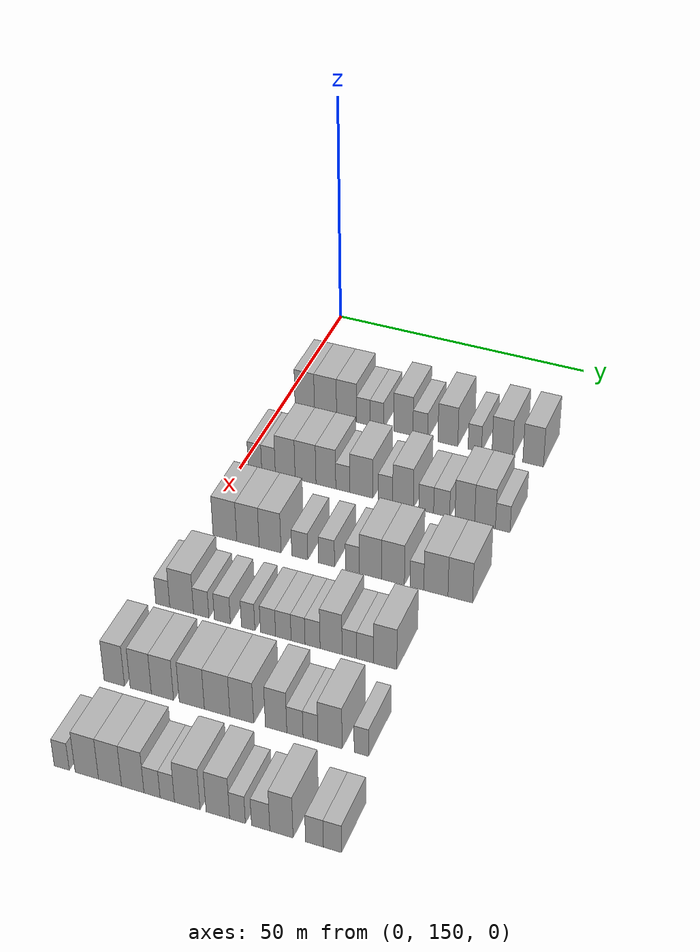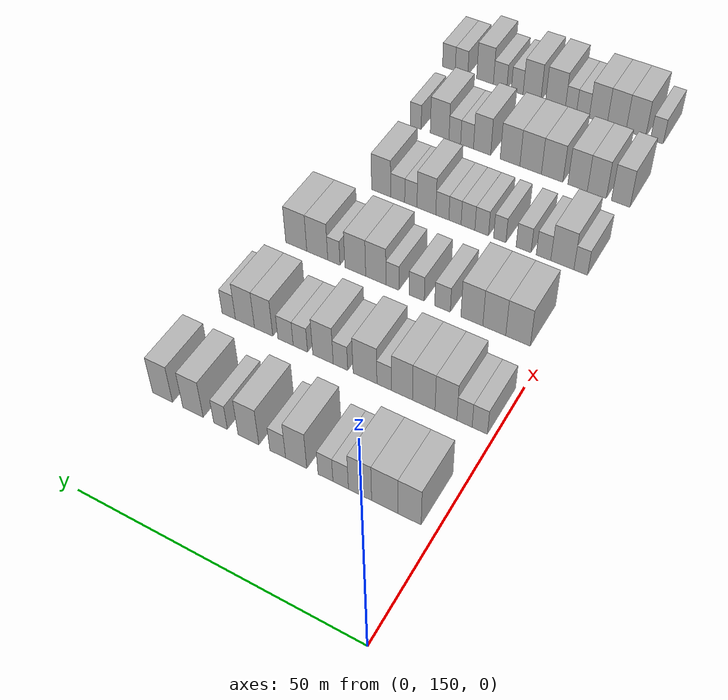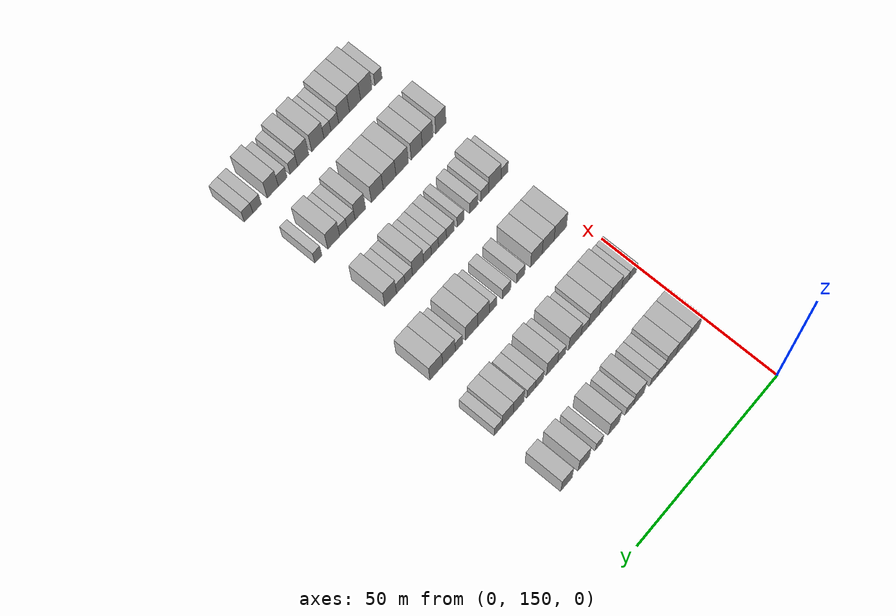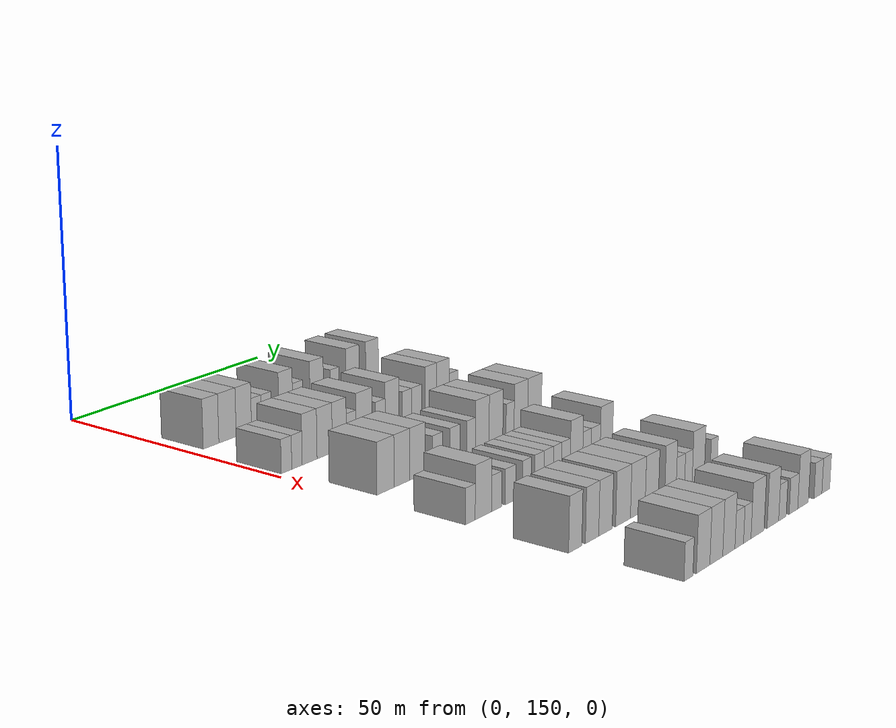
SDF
<sdf version="1.6">
 <world name="default">
  <model name="building_137">
   <static>1</static>
   <pose>25.0000 154.5564 0 0.000000 0.000000 0.000000</pose>
   <link name="link">
    <pose>0 0 4.50 0 0 0</pose>
    <collision name="collision"><geometry><box><size>10.0000 3.9215 9.0000</size></box></geometry></collision>
    <visual name="visual">
     <cast_shadows>0</cast_shadows>
     <geometry><box><size>10.0000 3.9215 9.0000</size></box></geometry>
     <material>
      <script>
       <uri>model://HANNAS_wall/materials/scripts</uri>
       <uri>model://HANNAS_wall/materials/textures</uri>
       <name>vrc/HANNAS_wall</name>
      </script>
     </material>
    </visual>
   </link>
  </model>
  <model name="building_138">
   <static>1</static>
   <pose>25.0000 158.7428 0 0.000000 0.000000 0.000000</pose>
   <link name="link">
    <pose>0 0 4.50 0 0 0</pose>
    <collision name="collision"><geometry><box><size>10.0000 4.4513 9.0000</size></box></geometry></collision>
    <visual name="visual">
     <cast_shadows>0</cast_shadows>
     <geometry><box><size>10.0000 4.4513 9.0000</size></box></geometry>
     <material>
      <script>
       <uri>model://HANNAS_wall/materials/scripts</uri>
       <uri>model://HANNAS_wall/materials/textures</uri>
       <name>vrc/HANNAS_wall</name>
      </script>
     </material>
    </visual>
   </link>
  </model>
  <model name="building_139">
   <static>1</static>
   <pose>25.0000 162.9707 0 0.000000 0.000000 0.000000</pose>
   <link name="link">
    <pose>0 0 4.50 0 0 0</pose>
    <collision name="collision"><geometry><box><size>10.0000 4.0044 9.0000</size></box></geometry></collision>
    <visual name="visual">
     <cast_shadows>0</cast_shadows>
     <geometry><box><size>10.0000 4.0044 9.0000</size></box></geometry>
     <material>
      <script>
       <uri>model://HANNAS_wall/materials/scripts</uri>
       <uri>model://HANNAS_wall/materials/textures</uri>
       <name>vrc/HANNAS_wall</name>
      </script>
     </material>
    </visual>
   </link>
  </model>
  <model name="building_140">
   <static>1</static>
   <pose>25.0000 166.3244 0 0.000000 0.000000 0.000000</pose>
   <link name="link">
    <pose>0 0 3.00 0 0 0</pose>
    <collision name="collision"><geometry><box><size>10.0000 2.7031 6.0000</size></box></geometry></collision>
    <visual name="visual">
     <cast_shadows>0</cast_shadows>
     <geometry><box><size>10.0000 2.7031 6.0000</size></box></geometry>
     <material>
      <script>
       <uri>model://HANNAS_wall/materials/scripts</uri>
       <uri>model://HANNAS_wall/materials/textures</uri>
       <name>vrc/HANNAS_wall</name>
      </script>
     </material>
    </visual>
   </link>
  </model>
  <model name="building_141">
   <static>1</static>
   <pose>25.0000 168.9942 0 0.000000 0.000000 0.000000</pose>
   <link name="link">
    <pose>0 0 3.00 0 0 0</pose>
    <collision name="collision"><geometry><box><size>10.0000 2.6364 6.0000</size></box></geometry></collision>
    <visual name="visual">
     <cast_shadows>0</cast_shadows>
     <geometry><box><size>10.0000 2.6364 6.0000</size></box></geometry>
     <material>
      <script>
       <uri>model://HANNAS_wall/materials/scripts</uri>
       <uri>model://HANNAS_wall/materials/textures</uri>
       <name>vrc/HANNAS_wall</name>
      </script>
     </material>
    </visual>
   </link>
  </model>
  <model name="building_142">
   <static>1</static>
   <pose>25.0000 174.2160 0 0.000000 0.000000 0.000000</pose>
   <link name="link">
    <pose>0 0 4.50 0 0 0</pose>
    <collision name="collision"><geometry><box><size>10.0000 3.8071 9.0000</size></box></geometry></collision>
    <visual name="visual">
     <cast_shadows>0</cast_shadows>
     <geometry><box><size>10.0000 3.8071 9.0000</size></box></geometry>
     <material>
      <script>
       <uri>model://HANNAS_wall/materials/scripts</uri>
       <uri>model://HANNAS_wall/materials/textures</uri>
       <name>vrc/HANNAS_wall</name>
      </script>
     </material>
    </visual>
   </link>
  </model>
  <model name="building_143">
   <static>1</static>
   <pose>25.0000 177.5562 0 0.000000 0.000000 0.000000</pose>
   <link name="link">
    <pose>0 0 3.00 0 0 0</pose>
    <collision name="collision"><geometry><box><size>10.0000 2.8733 6.0000</size></box></geometry></collision>
    <visual name="visual">
     <cast_shadows>0</cast_shadows>
     <geometry><box><size>10.0000 2.8733 6.0000</size></box></geometry>
     <material>
      <script>
       <uri>model://HANNAS_wall/materials/scripts</uri>
       <uri>model://HANNAS_wall/materials/textures</uri>
       <name>vrc/HANNAS_wall</name>
      </script>
     </material>
    </visual>
   </link>
  </model>
  <model name="building_144">
   <static>1</static>
   <pose>25.0000 182.9246 0 0.000000 0.000000 0.000000</pose>
   <link name="link">
    <pose>0 0 4.50 0 0 0</pose>
    <collision name="collision"><geometry><box><size>10.0000 3.8635 9.0000</size></box></geometry></collision>
    <visual name="visual">
     <cast_shadows>0</cast_shadows>
     <geometry><box><size>10.0000 3.8635 9.0000</size></box></geometry>
     <material>
      <script>
       <uri>model://HANNAS_wall/materials/scripts</uri>
       <uri>model://HANNAS_wall/materials/textures</uri>
       <name>vrc/HANNAS_wall</name>
      </script>
     </material>
    </visual>
   </link>
  </model>
  <model name="building_145">
   <static>1</static>
   <pose>25.0000 188.1455 0 0.000000 0.000000 0.000000</pose>
   <link name="link">
    <pose>0 0 3.00 0 0 0</pose>
    <collision name="collision"><geometry><box><size>10.0000 2.5784 6.0000</size></box></geometry></collision>
    <visual name="visual">
     <cast_shadows>0</cast_shadows>
     <geometry><box><size>10.0000 2.5784 6.0000</size></box></geometry>
     <material>
      <script>
       <uri>model://HANNAS_wall/materials/scripts</uri>
       <uri>model://HANNAS_wall/materials/textures</uri>
       <name>vrc/HANNAS_wall</name>
      </script>
     </material>
    </visual>
   </link>
  </model>
  <model name="building_146">
   <static>1</static>
   <pose>25.0000 193.3912 0 0.000000 0.000000 0.000000</pose>
   <link name="link">
    <pose>0 0 4.50 0 0 0</pose>
    <collision name="collision"><geometry><box><size>10.0000 3.9129 9.0000</size></box></geometry></collision>
    <visual name="visual">
     <cast_shadows>0</cast_shadows>
     <geometry><box><size>10.0000 3.9129 9.0000</size></box></geometry>
     <material>
      <script>
       <uri>model://HANNAS_wall/materials/scripts</uri>
       <uri>model://HANNAS_wall/materials/textures</uri>
       <name>vrc/HANNAS_wall</name>
      </script>
     </material>
    </visual>
   </link>
  </model>
  <model name="building_147">
   <static>1</static>
   <pose>25.0000 199.2993 0 0.000000 0.000000 0.000000</pose>
   <link name="link">
    <pose>0 0 4.50 0 0 0</pose>
    <collision name="collision"><geometry><box><size>10.0000 3.9034 9.0000</size></box></geometry></collision>
    <visual name="visual">
     <cast_shadows>0</cast_shadows>
     <geometry><box><size>10.0000 3.9034 9.0000</size></box></geometry>
     <material>
      <script>
       <uri>model://HANNAS_wall/materials/scripts</uri>
       <uri>model://HANNAS_wall/materials/textures</uri>
       <name>vrc/HANNAS_wall</name>
      </script>
     </material>
    </visual>
   </link>
  </model>
  <model name="building_311">
   <static>1</static>
   <pose>44.0000 152.5964 0 0.000000 0.000000 0.000000</pose>
   <link name="link">
    <pose>0 0 3.00 0 0 0</pose>
    <collision name="collision"><geometry><box><size>10.0000 2.6664 6.0000</size></box></geometry></collision>
    <visual name="visual">
     <cast_shadows>0</cast_shadows>
     <geometry><box><size>10.0000 2.6664 6.0000</size></box></geometry>
     <material>
      <script>
       <uri>model://HANNAS_wall/materials/scripts</uri>
       <uri>model://HANNAS_wall/materials/textures</uri>
       <name>vrc/HANNAS_wall</name>
      </script>
     </material>
    </visual>
   </link>
  </model>
  <model name="building_312">
   <static>1</static>
   <pose>44.0000 155.2614 0 0.000000 0.000000 0.000000</pose>
   <link name="link">
    <pose>0 0 3.00 0 0 0</pose>
    <collision name="collision"><geometry><box><size>10.0000 2.6636 6.0000</size></box></geometry></collision>
    <visual name="visual">
     <cast_shadows>0</cast_shadows>
     <geometry><box><size>10.0000 2.6636 6.0000</size></box></geometry>
     <material>
      <script>
       <uri>model://HANNAS_wall/materials/scripts</uri>
       <uri>model://HANNAS_wall/materials/textures</uri>
       <name>vrc/HANNAS_wall</name>
      </script>
     </material>
    </visual>
   </link>
  </model>
  <model name="building_313">
   <static>1</static>
   <pose>44.0000 158.5323 0 0.000000 0.000000 0.000000</pose>
   <link name="link">
    <pose>0 0 4.50 0 0 0</pose>
    <collision name="collision"><geometry><box><size>10.0000 3.8782 9.0000</size></box></geometry></collision>
    <visual name="visual">
     <cast_shadows>0</cast_shadows>
     <geometry><box><size>10.0000 3.8782 9.0000</size></box></geometry>
     <material>
      <script>
       <uri>model://HANNAS_wall/materials/scripts</uri>
       <uri>model://HANNAS_wall/materials/textures</uri>
       <name>vrc/HANNAS_wall</name>
      </script>
     </material>
    </visual>
   </link>
  </model>
  <model name="building_314">
   <static>1</static>
   <pose>44.0000 162.4933 0 0.000000 0.000000 0.000000</pose>
   <link name="link">
    <pose>0 0 4.50 0 0 0</pose>
    <collision name="collision"><geometry><box><size>10.0000 4.0440 9.0000</size></box></geometry></collision>
    <visual name="visual">
     <cast_shadows>0</cast_shadows>
     <geometry><box><size>10.0000 4.0440 9.0000</size></box></geometry>
     <material>
      <script>
       <uri>model://HANNAS_wall/materials/scripts</uri>
       <uri>model://HANNAS_wall/materials/textures</uri>
       <name>vrc/HANNAS_wall</name>
      </script>
     </material>
    </visual>
   </link>
  </model>
  <model name="building_315">
   <static>1</static>
   <pose>44.0000 166.4260 0 0.000000 0.000000 0.000000</pose>
   <link name="link">
    <pose>0 0 4.50 0 0 0</pose>
    <collision name="collision"><geometry><box><size>10.0000 3.8213 9.0000</size></box></geometry></collision>
    <visual name="visual">
     <cast_shadows>0</cast_shadows>
     <geometry><box><size>10.0000 3.8213 9.0000</size></box></geometry>
     <material>
      <script>
       <uri>model://HANNAS_wall/materials/scripts</uri>
       <uri>model://HANNAS_wall/materials/textures</uri>
       <name>vrc/HANNAS_wall</name>
      </script>
     </material>
    </visual>
   </link>
  </model>
  <model name="building_316">
   <static>1</static>
   <pose>44.0000 169.6751 0 0.000000 0.000000 0.000000</pose>
   <link name="link">
    <pose>0 0 3.00 0 0 0</pose>
    <collision name="collision"><geometry><box><size>10.0000 2.6770 6.0000</size></box></geometry></collision>
    <visual name="visual">
     <cast_shadows>0</cast_shadows>
     <geometry><box><size>10.0000 2.6770 6.0000</size></box></geometry>
     <material>
      <script>
       <uri>model://HANNAS_wall/materials/scripts</uri>
       <uri>model://HANNAS_wall/materials/textures</uri>
       <name>vrc/HANNAS_wall</name>
      </script>
     </material>
    </visual>
   </link>
  </model>
  <model name="building_317">
   <static>1</static>
   <pose>44.0000 173.2300 0 0.000000 0.000000 0.000000</pose>
   <link name="link">
    <pose>0 0 4.50 0 0 0</pose>
    <collision name="collision"><geometry><box><size>10.0000 4.4329 9.0000</size></box></geometry></collision>
    <visual name="visual">
     <cast_shadows>0</cast_shadows>
     <geometry><box><size>10.0000 4.4329 9.0000</size></box></geometry>
     <material>
      <script>
       <uri>model://HANNAS_wall/materials/scripts</uri>
       <uri>model://HANNAS_wall/materials/textures</uri>
       <name>vrc/HANNAS_wall</name>
      </script>
     </material>
    </visual>
   </link>
  </model>
  <model name="building_318">
   <static>1</static>
   <pose>44.0000 177.8176 0 0.000000 0.000000 0.000000</pose>
   <link name="link">
    <pose>0 0 3.00 0 0 0</pose>
    <collision name="collision"><geometry><box><size>10.0000 2.7422 6.0000</size></box></geometry></collision>
    <visual name="visual">
     <cast_shadows>0</cast_shadows>
     <geometry><box><size>10.0000 2.7422 6.0000</size></box></geometry>
     <material>
      <script>
       <uri>model://HANNAS_wall/materials/scripts</uri>
       <uri>model://HANNAS_wall/materials/textures</uri>
       <name>vrc/HANNAS_wall</name>
      </script>
     </material>
    </visual>
   </link>
  </model>
  <model name="building_319">
   <static>1</static>
   <pose>44.0000 181.1427 0 0.000000 0.000000 0.000000</pose>
   <link name="link">
    <pose>0 0 4.50 0 0 0</pose>
    <collision name="collision"><geometry><box><size>10.0000 3.9082 9.0000</size></box></geometry></collision>
    <visual name="visual">
     <cast_shadows>0</cast_shadows>
     <geometry><box><size>10.0000 3.9082 9.0000</size></box></geometry>
     <material>
      <script>
       <uri>model://HANNAS_wall/materials/scripts</uri>
       <uri>model://HANNAS_wall/materials/textures</uri>
       <name>vrc/HANNAS_wall</name>
      </script>
     </material>
    </visual>
   </link>
  </model>
  <model name="building_320">
   <static>1</static>
   <pose>44.0000 185.4923 0 0.000000 0.000000 0.000000</pose>
   <link name="link">
    <pose>0 0 3.00 0 0 0</pose>
    <collision name="collision"><geometry><box><size>10.0000 2.7911 6.0000</size></box></geometry></collision>
    <visual name="visual">
     <cast_shadows>0</cast_shadows>
     <geometry><box><size>10.0000 2.7911 6.0000</size></box></geometry>
     <material>
      <script>
       <uri>model://HANNAS_wall/materials/scripts</uri>
       <uri>model://HANNAS_wall/materials/textures</uri>
       <name>vrc/HANNAS_wall</name>
      </script>
     </material>
    </visual>
   </link>
  </model>
  <model name="building_321">
   <static>1</static>
   <pose>44.0000 188.3808 0 0.000000 0.000000 0.000000</pose>
   <link name="link">
    <pose>0 0 3.00 0 0 0</pose>
    <collision name="collision"><geometry><box><size>10.0000 2.9858 6.0000</size></box></geometry></collision>
    <visual name="visual">
     <cast_shadows>0</cast_shadows>
     <geometry><box><size>10.0000 2.9858 6.0000</size></box></geometry>
     <material>
      <script>
       <uri>model://HANNAS_wall/materials/scripts</uri>
       <uri>model://HANNAS_wall/materials/textures</uri>
       <name>vrc/HANNAS_wall</name>
      </script>
     </material>
    </visual>
   </link>
  </model>
  <model name="building_322">
   <static>1</static>
   <pose>44.0000 192.6890 0 0.000000 0.000000 0.000000</pose>
   <link name="link">
    <pose>0 0 4.50 0 0 0</pose>
    <collision name="collision"><geometry><box><size>10.0000 3.6307 9.0000</size></box></geometry></collision>
    <visual name="visual">
     <cast_shadows>0</cast_shadows>
     <geometry><box><size>10.0000 3.6307 9.0000</size></box></geometry>
     <material>
      <script>
       <uri>model://HANNAS_wall/materials/scripts</uri>
       <uri>model://HANNAS_wall/materials/textures</uri>
       <name>vrc/HANNAS_wall</name>
      </script>
     </material>
    </visual>
   </link>
  </model>
  <model name="building_323">
   <static>1</static>
   <pose>44.0000 196.4230 0 0.000000 0.000000 0.000000</pose>
   <link name="link">
    <pose>0 0 4.50 0 0 0</pose>
    <collision name="collision"><geometry><box><size>10.0000 3.8373 9.0000</size></box></geometry></collision>
    <visual name="visual">
     <cast_shadows>0</cast_shadows>
     <geometry><box><size>10.0000 3.8373 9.0000</size></box></geometry>
     <material>
      <script>
       <uri>model://HANNAS_wall/materials/scripts</uri>
       <uri>model://HANNAS_wall/materials/textures</uri>
       <name>vrc/HANNAS_wall</name>
      </script>
     </material>
    </visual>
   </link>
  </model>
  <model name="building_324">
   <static>1</static>
   <pose>44.0000 199.6893 0 0.000000 0.000000 0.000000</pose>
   <link name="link">
    <pose>0 0 3.00 0 0 0</pose>
    <collision name="collision"><geometry><box><size>10.0000 2.6952 6.0000</size></box></geometry></collision>
    <visual name="visual">
     <cast_shadows>0</cast_shadows>
     <geometry><box><size>10.0000 2.6952 6.0000</size></box></geometry>
     <material>
      <script>
       <uri>model://HANNAS_wall/materials/scripts</uri>
       <uri>model://HANNAS_wall/materials/textures</uri>
       <name>vrc/HANNAS_wall</name>
      </script>
     </material>
    </visual>
   </link>
  </model>
  <model name="building_474">
   <static>1</static>
   <pose>63.0000 155.1240 0 0.000000 0.000000 0.000000</pose>
   <link name="link">
    <pose>0 0 4.50 0 0 0</pose>
    <collision name="collision"><geometry><box><size>10.0000 4.4829 9.0000</size></box></geometry></collision>
    <visual name="visual">
     <cast_shadows>0</cast_shadows>
     <geometry><box><size>10.0000 4.4829 9.0000</size></box></geometry>
     <material>
      <script>
       <uri>model://HANNAS_wall/materials/scripts</uri>
       <uri>model://HANNAS_wall/materials/textures</uri>
       <name>vrc/HANNAS_wall</name>
      </script>
     </material>
    </visual>
   </link>
  </model>
  <model name="building_475">
   <static>1</static>
   <pose>63.0000 159.4865 0 0.000000 0.000000 0.000000</pose>
   <link name="link">
    <pose>0 0 4.50 0 0 0</pose>
    <collision name="collision"><geometry><box><size>10.0000 4.2420 9.0000</size></box></geometry></collision>
    <visual name="visual">
     <cast_shadows>0</cast_shadows>
     <geometry><box><size>10.0000 4.2420 9.0000</size></box></geometry>
     <material>
      <script>
       <uri>model://HANNAS_wall/materials/scripts</uri>
       <uri>model://HANNAS_wall/materials/textures</uri>
       <name>vrc/HANNAS_wall</name>
      </script>
     </material>
    </visual>
   </link>
  </model>
  <model name="building_476">
   <static>1</static>
   <pose>63.0000 163.6630 0 0.000000 0.000000 0.000000</pose>
   <link name="link">
    <pose>0 0 4.50 0 0 0</pose>
    <collision name="collision"><geometry><box><size>10.0000 4.1110 9.0000</size></box></geometry></collision>
    <visual name="visual">
     <cast_shadows>0</cast_shadows>
     <geometry><box><size>10.0000 4.1110 9.0000</size></box></geometry>
     <material>
      <script>
       <uri>model://HANNAS_wall/materials/scripts</uri>
       <uri>model://HANNAS_wall/materials/textures</uri>
       <name>vrc/HANNAS_wall</name>
      </script>
     </material>
    </visual>
   </link>
  </model>
  <model name="building_477">
   <static>1</static>
   <pose>63.0000 169.2064 0 0.000000 0.000000 0.000000</pose>
   <link name="link">
    <pose>0 0 3.00 0 0 0</pose>
    <collision name="collision"><geometry><box><size>10.0000 2.9759 6.0000</size></box></geometry></collision>
    <visual name="visual">
     <cast_shadows>0</cast_shadows>
     <geometry><box><size>10.0000 2.9759 6.0000</size></box></geometry>
     <material>
      <script>
       <uri>model://HANNAS_wall/materials/scripts</uri>
       <uri>model://HANNAS_wall/materials/textures</uri>
       <name>vrc/HANNAS_wall</name>
      </script>
     </material>
    </visual>
   </link>
  </model>
  <model name="building_478">
   <static>1</static>
   <pose>63.0000 174.1676 0 0.000000 0.000000 0.000000</pose>
   <link name="link">
    <pose>0 0 3.00 0 0 0</pose>
    <collision name="collision"><geometry><box><size>10.0000 2.9465 6.0000</size></box></geometry></collision>
    <visual name="visual">
     <cast_shadows>0</cast_shadows>
     <geometry><box><size>10.0000 2.9465 6.0000</size></box></geometry>
     <material>
      <script>
       <uri>model://HANNAS_wall/materials/scripts</uri>
       <uri>model://HANNAS_wall/materials/textures</uri>
       <name>vrc/HANNAS_wall</name>
      </script>
     </material>
    </visual>
   </link>
  </model>
  <model name="building_479">
   <static>1</static>
   <pose>63.0000 178.9086 0 0.000000 0.000000 0.000000</pose>
   <link name="link">
    <pose>0 0 3.00 0 0 0</pose>
    <collision name="collision"><geometry><box><size>10.0000 2.5354 6.0000</size></box></geometry></collision>
    <visual name="visual">
     <cast_shadows>0</cast_shadows>
     <geometry><box><size>10.0000 2.5354 6.0000</size></box></geometry>
     <material>
      <script>
       <uri>model://HANNAS_wall/materials/scripts</uri>
       <uri>model://HANNAS_wall/materials/textures</uri>
       <name>vrc/HANNAS_wall</name>
      </script>
     </material>
    </visual>
   </link>
  </model>
  <model name="building_480">
   <static>1</static>
   <pose>63.0000 182.1879 0 0.000000 0.000000 0.000000</pose>
   <link name="link">
    <pose>0 0 4.50 0 0 0</pose>
    <collision name="collision"><geometry><box><size>10.0000 4.0233 9.0000</size></box></geometry></collision>
    <visual name="visual">
     <cast_shadows>0</cast_shadows>
     <geometry><box><size>10.0000 4.0233 9.0000</size></box></geometry>
     <material>
      <script>
       <uri>model://HANNAS_wall/materials/scripts</uri>
       <uri>model://HANNAS_wall/materials/textures</uri>
       <name>vrc/HANNAS_wall</name>
      </script>
     </material>
    </visual>
   </link>
  </model>
  <model name="building_481">
   <static>1</static>
   <pose>63.0000 186.2838 0 0.000000 0.000000 0.000000</pose>
   <link name="link">
    <pose>0 0 4.50 0 0 0</pose>
    <collision name="collision"><geometry><box><size>10.0000 4.1685 9.0000</size></box></geometry></collision>
    <visual name="visual">
     <cast_shadows>0</cast_shadows>
     <geometry><box><size>10.0000 4.1685 9.0000</size></box></geometry>
     <material>
      <script>
       <uri>model://HANNAS_wall/materials/scripts</uri>
       <uri>model://HANNAS_wall/materials/textures</uri>
       <name>vrc/HANNAS_wall</name>
      </script>
     </material>
    </visual>
   </link>
  </model>
  <model name="building_482">
   <static>1</static>
   <pose>63.0000 190.6131 0 0.000000 0.000000 0.000000</pose>
   <link name="link">
    <pose>0 0 3.00 0 0 0</pose>
    <collision name="collision"><geometry><box><size>10.0000 2.4902 6.0000</size></box></geometry></collision>
    <visual name="visual">
     <cast_shadows>0</cast_shadows>
     <geometry><box><size>10.0000 2.4902 6.0000</size></box></geometry>
     <material>
      <script>
       <uri>model://HANNAS_wall/materials/scripts</uri>
       <uri>model://HANNAS_wall/materials/textures</uri>
       <name>vrc/HANNAS_wall</name>
      </script>
     </material>
    </visual>
   </link>
  </model>
  <model name="building_483">
   <static>1</static>
   <pose>63.0000 194.0188 0 0.000000 0.000000 0.000000</pose>
   <link name="link">
    <pose>0 0 4.50 0 0 0</pose>
    <collision name="collision"><geometry><box><size>10.0000 4.3211 9.0000</size></box></geometry></collision>
    <visual name="visual">
     <cast_shadows>0</cast_shadows>
     <geometry><box><size>10.0000 4.3211 9.0000</size></box></geometry>
     <material>
      <script>
       <uri>model://HANNAS_wall/materials/scripts</uri>
       <uri>model://HANNAS_wall/materials/textures</uri>
       <name>vrc/HANNAS_wall</name>
      </script>
     </material>
    </visual>
   </link>
  </model>
  <model name="building_484">
   <static>1</static>
   <pose>63.0000 198.3717 0 0.000000 0.000000 0.000000</pose>
   <link name="link">
    <pose>0 0 4.50 0 0 0</pose>
    <collision name="collision"><geometry><box><size>10.0000 4.3847 9.0000</size></box></geometry></collision>
    <visual name="visual">
     <cast_shadows>0</cast_shadows>
     <geometry><box><size>10.0000 4.3847 9.0000</size></box></geometry>
     <material>
      <script>
       <uri>model://HANNAS_wall/materials/scripts</uri>
       <uri>model://HANNAS_wall/materials/textures</uri>
       <name>vrc/HANNAS_wall</name>
      </script>
     </material>
    </visual>
   </link>
  </model>
  <model name="building_643">
   <static>1</static>
   <pose>82.0000 152.2146 0 0.000000 0.000000 0.000000</pose>
   <link name="link">
    <pose>0 0 3.00 0 0 0</pose>
    <collision name="collision"><geometry><box><size>10.0000 2.5679 6.0000</size></box></geometry></collision>
    <visual name="visual">
     <cast_shadows>0</cast_shadows>
     <geometry><box><size>10.0000 2.5679 6.0000</size></box></geometry>
     <material>
      <script>
       <uri>model://HANNAS_wall/materials/scripts</uri>
       <uri>model://HANNAS_wall/materials/textures</uri>
       <name>vrc/HANNAS_wall</name>
      </script>
     </material>
    </visual>
   </link>
  </model>
  <model name="building_644">
   <static>1</static>
   <pose>82.0000 155.6944 0 0.000000 0.000000 0.000000</pose>
   <link name="link">
    <pose>0 0 4.50 0 0 0</pose>
    <collision name="collision"><geometry><box><size>10.0000 4.3917 9.0000</size></box></geometry></collision>
    <visual name="visual">
     <cast_shadows>0</cast_shadows>
     <geometry><box><size>10.0000 4.3917 9.0000</size></box></geometry>
     <material>
      <script>
       <uri>model://HANNAS_wall/materials/scripts</uri>
       <uri>model://HANNAS_wall/materials/textures</uri>
       <name>vrc/HANNAS_wall</name>
      </script>
     </material>
    </visual>
   </link>
  </model>
  <model name="building_645">
   <static>1</static>
   <pose>82.0000 159.2863 0 0.000000 0.000000 0.000000</pose>
   <link name="link">
    <pose>0 0 3.00 0 0 0</pose>
    <collision name="collision"><geometry><box><size>10.0000 2.7920 6.0000</size></box></geometry></collision>
    <visual name="visual">
     <cast_shadows>0</cast_shadows>
     <geometry><box><size>10.0000 2.7920 6.0000</size></box></geometry>
     <material>
      <script>
       <uri>model://HANNAS_wall/materials/scripts</uri>
       <uri>model://HANNAS_wall/materials/textures</uri>
       <name>vrc/HANNAS_wall</name>
      </script>
     </material>
    </visual>
   </link>
  </model>
  <model name="building_646">
   <static>1</static>
   <pose>82.0000 163.1372 0 0.000000 0.000000 0.000000</pose>
   <link name="link">
    <pose>0 0 3.00 0 0 0</pose>
    <collision name="collision"><geometry><box><size>10.0000 2.9098 6.0000</size></box></geometry></collision>
    <visual name="visual">
     <cast_shadows>0</cast_shadows>
     <geometry><box><size>10.0000 2.9098 6.0000</size></box></geometry>
     <material>
      <script>
       <uri>model://HANNAS_wall/materials/scripts</uri>
       <uri>model://HANNAS_wall/materials/textures</uri>
       <name>vrc/HANNAS_wall</name>
      </script>
     </material>
    </visual>
   </link>
  </model>
  <model name="building_647">
   <static>1</static>
   <pose>82.0000 167.8036 0 0.000000 0.000000 0.000000</pose>
   <link name="link">
    <pose>0 0 3.00 0 0 0</pose>
    <collision name="collision"><geometry><box><size>10.0000 2.4231 6.0000</size></box></geometry></collision>
    <visual name="visual">
     <cast_shadows>0</cast_shadows>
     <geometry><box><size>10.0000 2.4231 6.0000</size></box></geometry>
     <material>
      <script>
       <uri>model://HANNAS_wall/materials/scripts</uri>
       <uri>model://HANNAS_wall/materials/textures</uri>
       <name>vrc/HANNAS_wall</name>
      </script>
     </material>
    </visual>
   </link>
  </model>
  <model name="building_648">
   <static>1</static>
   <pose>82.0000 171.3715 0 0.000000 0.000000 0.000000</pose>
   <link name="link">
    <pose>0 0 3.00 0 0 0</pose>
    <collision name="collision"><geometry><box><size>10.0000 2.7128 6.0000</size></box></geometry></collision>
    <visual name="visual">
     <cast_shadows>0</cast_shadows>
     <geometry><box><size>10.0000 2.7128 6.0000</size></box></geometry>
     <material>
      <script>
       <uri>model://HANNAS_wall/materials/scripts</uri>
       <uri>model://HANNAS_wall/materials/textures</uri>
       <name>vrc/HANNAS_wall</name>
      </script>
     </material>
    </visual>
   </link>
  </model>
  <model name="building_649">
   <static>1</static>
   <pose>82.0000 174.1151 0 0.000000 0.000000 0.000000</pose>
   <link name="link">
    <pose>0 0 3.00 0 0 0</pose>
    <collision name="collision"><geometry><box><size>10.0000 2.7742 6.0000</size></box></geometry></collision>
    <visual name="visual">
     <cast_shadows>0</cast_shadows>
     <geometry><box><size>10.0000 2.7742 6.0000</size></box></geometry>
     <material>
      <script>
       <uri>model://HANNAS_wall/materials/scripts</uri>
       <uri>model://HANNAS_wall/materials/textures</uri>
       <name>vrc/HANNAS_wall</name>
      </script>
     </material>
    </visual>
   </link>
  </model>
  <model name="building_650">
   <static>1</static>
   <pose>82.0000 176.7374 0 0.000000 0.000000 0.000000</pose>
   <link name="link">
    <pose>0 0 3.00 0 0 0</pose>
    <collision name="collision"><geometry><box><size>10.0000 2.4704 6.0000</size></box></geometry></collision>
    <visual name="visual">
     <cast_shadows>0</cast_shadows>
     <geometry><box><size>10.0000 2.4704 6.0000</size></box></geometry>
     <material>
      <script>
       <uri>model://HANNAS_wall/materials/scripts</uri>
       <uri>model://HANNAS_wall/materials/textures</uri>
       <name>vrc/HANNAS_wall</name>
      </script>
     </material>
    </visual>
   </link>
  </model>
  <model name="building_651">
   <static>1</static>
   <pose>82.0000 179.3061 0 0.000000 0.000000 0.000000</pose>
   <link name="link">
    <pose>0 0 3.00 0 0 0</pose>
    <collision name="collision"><geometry><box><size>10.0000 2.6671 6.0000</size></box></geometry></collision>
    <visual name="visual">
     <cast_shadows>0</cast_shadows>
     <geometry><box><size>10.0000 2.6671 6.0000</size></box></geometry>
     <material>
      <script>
       <uri>model://HANNAS_wall/materials/scripts</uri>
       <uri>model://HANNAS_wall/materials/textures</uri>
       <name>vrc/HANNAS_wall</name>
      </script>
     </material>
    </visual>
   </link>
  </model>
  <model name="building_652">
   <static>1</static>
   <pose>82.0000 182.5740 0 0.000000 0.000000 0.000000</pose>
   <link name="link">
    <pose>0 0 4.50 0 0 0</pose>
    <collision name="collision"><geometry><box><size>10.0000 3.8687 9.0000</size></box></geometry></collision>
    <visual name="visual">
     <cast_shadows>0</cast_shadows>
     <geometry><box><size>10.0000 3.8687 9.0000</size></box></geometry>
     <material>
      <script>
       <uri>model://HANNAS_wall/materials/scripts</uri>
       <uri>model://HANNAS_wall/materials/textures</uri>
       <name>vrc/HANNAS_wall</name>
      </script>
     </material>
    </visual>
   </link>
  </model>
  <model name="building_653">
   <static>1</static>
   <pose>82.0000 185.7849 0 0.000000 0.000000 0.000000</pose>
   <link name="link">
    <pose>0 0 3.00 0 0 0</pose>
    <collision name="collision"><geometry><box><size>10.0000 2.5532 6.0000</size></box></geometry></collision>
    <visual name="visual">
     <cast_shadows>0</cast_shadows>
     <geometry><box><size>10.0000 2.5532 6.0000</size></box></geometry>
     <material>
      <script>
       <uri>model://HANNAS_wall/materials/scripts</uri>
       <uri>model://HANNAS_wall/materials/textures</uri>
       <name>vrc/HANNAS_wall</name>
      </script>
     </material>
    </visual>
   </link>
  </model>
  <model name="building_654">
   <static>1</static>
   <pose>82.0000 188.5419 0 0.000000 0.000000 0.000000</pose>
   <link name="link">
    <pose>0 0 3.00 0 0 0</pose>
    <collision name="collision"><geometry><box><size>10.0000 2.9608 6.0000</size></box></geometry></collision>
    <visual name="visual">
     <cast_shadows>0</cast_shadows>
     <geometry><box><size>10.0000 2.9608 6.0000</size></box></geometry>
     <material>
      <script>
       <uri>model://HANNAS_wall/materials/scripts</uri>
       <uri>model://HANNAS_wall/materials/textures</uri>
       <name>vrc/HANNAS_wall</name>
      </script>
     </material>
    </visual>
   </link>
  </model>
  <model name="building_655">
   <static>1</static>
   <pose>82.0000 192.0247 0 0.000000 0.000000 0.000000</pose>
   <link name="link">
    <pose>0 0 4.50 0 0 0</pose>
    <collision name="collision"><geometry><box><size>10.0000 4.0048 9.0000</size></box></geometry></collision>
    <visual name="visual">
     <cast_shadows>0</cast_shadows>
     <geometry><box><size>10.0000 4.0048 9.0000</size></box></geometry>
     <material>
      <script>
       <uri>model://HANNAS_wall/materials/scripts</uri>
       <uri>model://HANNAS_wall/materials/textures</uri>
       <name>vrc/HANNAS_wall</name>
      </script>
     </material>
    </visual>
   </link>
  </model>
  <model name="building_814">
   <static>1</static>
   <pose>101.0000 152.6159 0 0.000000 0.000000 0.000000</pose>
   <link name="link">
    <pose>0 0 4.50 0 0 0</pose>
    <collision name="collision"><geometry><box><size>10.0000 3.6511 9.0000</size></box></geometry></collision>
    <visual name="visual">
     <cast_shadows>0</cast_shadows>
     <geometry><box><size>10.0000 3.6511 9.0000</size></box></geometry>
     <material>
      <script>
       <uri>model://HANNAS_wall/materials/scripts</uri>
       <uri>model://HANNAS_wall/materials/textures</uri>
       <name>vrc/HANNAS_wall</name>
      </script>
     </material>
    </visual>
   </link>
  </model>
  <model name="building_815">
   <static>1</static>
   <pose>101.0000 157.3239 0 0.000000 0.000000 0.000000</pose>
   <link name="link">
    <pose>0 0 4.50 0 0 0</pose>
    <collision name="collision"><geometry><box><size>10.0000 3.7650 9.0000</size></box></geometry></collision>
    <visual name="visual">
     <cast_shadows>0</cast_shadows>
     <geometry><box><size>10.0000 3.7650 9.0000</size></box></geometry>
     <material>
      <script>
       <uri>model://HANNAS_wall/materials/scripts</uri>
       <uri>model://HANNAS_wall/materials/textures</uri>
       <name>vrc/HANNAS_wall</name>
      </script>
     </material>
    </visual>
   </link>
  </model>
  <model name="building_816">
   <static>1</static>
   <pose>101.0000 161.1597 0 0.000000 0.000000 0.000000</pose>
   <link name="link">
    <pose>0 0 4.50 0 0 0</pose>
    <collision name="collision"><geometry><box><size>10.0000 3.9066 9.0000</size></box></geometry></collision>
    <visual name="visual">
     <cast_shadows>0</cast_shadows>
     <geometry><box><size>10.0000 3.9066 9.0000</size></box></geometry>
     <material>
      <script>
       <uri>model://HANNAS_wall/materials/scripts</uri>
       <uri>model://HANNAS_wall/materials/textures</uri>
       <name>vrc/HANNAS_wall</name>
      </script>
     </material>
    </visual>
   </link>
  </model>
  <model name="building_817">
   <static>1</static>
   <pose>101.0000 166.3020 0 0.000000 0.000000 0.000000</pose>
   <link name="link">
    <pose>0 0 4.50 0 0 0</pose>
    <collision name="collision"><geometry><box><size>10.0000 4.3780 9.0000</size></box></geometry></collision>
    <visual name="visual">
     <cast_shadows>0</cast_shadows>
     <geometry><box><size>10.0000 4.3780 9.0000</size></box></geometry>
     <material>
      <script>
       <uri>model://HANNAS_wall/materials/scripts</uri>
       <uri>model://HANNAS_wall/materials/textures</uri>
       <name>vrc/HANNAS_wall</name>
      </script>
     </material>
    </visual>
   </link>
  </model>
  <model name="building_818">
   <static>1</static>
   <pose>101.0000 170.7066 0 0.000000 0.000000 0.000000</pose>
   <link name="link">
    <pose>0 0 4.50 0 0 0</pose>
    <collision name="collision"><geometry><box><size>10.0000 4.4312 9.0000</size></box></geometry></collision>
    <visual name="visual">
     <cast_shadows>0</cast_shadows>
     <geometry><box><size>10.0000 4.4312 9.0000</size></box></geometry>
     <material>
      <script>
       <uri>model://HANNAS_wall/materials/scripts</uri>
       <uri>model://HANNAS_wall/materials/textures</uri>
       <name>vrc/HANNAS_wall</name>
      </script>
     </material>
    </visual>
   </link>
  </model>
  <model name="building_819">
   <static>1</static>
   <pose>101.0000 174.9752 0 0.000000 0.000000 0.000000</pose>
   <link name="link">
    <pose>0 0 4.50 0 0 0</pose>
    <collision name="collision"><geometry><box><size>10.0000 4.1059 9.0000</size></box></geometry></collision>
    <visual name="visual">
     <cast_shadows>0</cast_shadows>
     <geometry><box><size>10.0000 4.1059 9.0000</size></box></geometry>
     <material>
      <script>
       <uri>model://HANNAS_wall/materials/scripts</uri>
       <uri>model://HANNAS_wall/materials/textures</uri>
       <name>vrc/HANNAS_wall</name>
      </script>
     </material>
    </visual>
   </link>
  </model>
  <model name="building_820">
   <static>1</static>
   <pose>101.0000 180.8524 0 0.000000 0.000000 0.000000</pose>
   <link name="link">
    <pose>0 0 4.50 0 0 0</pose>
    <collision name="collision"><geometry><box><size>10.0000 3.6486 9.0000</size></box></geometry></collision>
    <visual name="visual">
     <cast_shadows>0</cast_shadows>
     <geometry><box><size>10.0000 3.6486 9.0000</size></box></geometry>
     <material>
      <script>
       <uri>model://HANNAS_wall/materials/scripts</uri>
       <uri>model://HANNAS_wall/materials/textures</uri>
       <name>vrc/HANNAS_wall</name>
      </script>
     </material>
    </visual>
   </link>
  </model>
  <model name="building_821">
   <static>1</static>
   <pose>101.0000 184.0488 0 0.000000 0.000000 0.000000</pose>
   <link name="link">
    <pose>0 0 3.00 0 0 0</pose>
    <collision name="collision"><geometry><box><size>10.0000 2.7443 6.0000</size></box></geometry></collision>
    <visual name="visual">
     <cast_shadows>0</cast_shadows>
     <geometry><box><size>10.0000 2.7443 6.0000</size></box></geometry>
     <material>
      <script>
       <uri>model://HANNAS_wall/materials/scripts</uri>
       <uri>model://HANNAS_wall/materials/textures</uri>
       <name>vrc/HANNAS_wall</name>
      </script>
     </material>
    </visual>
   </link>
  </model>
  <model name="building_822">
   <static>1</static>
   <pose>101.0000 186.6790 0 0.000000 0.000000 0.000000</pose>
   <link name="link">
    <pose>0 0 3.00 0 0 0</pose>
    <collision name="collision"><geometry><box><size>10.0000 2.5161 6.0000</size></box></geometry></collision>
    <visual name="visual">
     <cast_shadows>0</cast_shadows>
     <geometry><box><size>10.0000 2.5161 6.0000</size></box></geometry>
     <material>
      <script>
       <uri>model://HANNAS_wall/materials/scripts</uri>
       <uri>model://HANNAS_wall/materials/textures</uri>
       <name>vrc/HANNAS_wall</name>
      </script>
     </material>
    </visual>
   </link>
  </model>
  <model name="building_823">
   <static>1</static>
   <pose>101.0000 189.9665 0 0.000000 0.000000 0.000000</pose>
   <link name="link">
    <pose>0 0 4.50 0 0 0</pose>
    <collision name="collision"><geometry><box><size>10.0000 4.0587 9.0000</size></box></geometry></collision>
    <visual name="visual">
     <cast_shadows>0</cast_shadows>
     <geometry><box><size>10.0000 4.0587 9.0000</size></box></geometry>
     <material>
      <script>
       <uri>model://HANNAS_wall/materials/scripts</uri>
       <uri>model://HANNAS_wall/materials/textures</uri>
       <name>vrc/HANNAS_wall</name>
      </script>
     </material>
    </visual>
   </link>
  </model>
  <model name="building_824">
   <static>1</static>
   <pose>101.0000 195.2008 0 0.000000 0.000000 0.000000</pose>
   <link name="link">
    <pose>0 0 3.00 0 0 0</pose>
    <collision name="collision"><geometry><box><size>10.0000 2.4099 6.0000</size></box></geometry></collision>
    <visual name="visual">
     <cast_shadows>0</cast_shadows>
     <geometry><box><size>10.0000 2.4099 6.0000</size></box></geometry>
     <material>
      <script>
       <uri>model://HANNAS_wall/materials/scripts</uri>
       <uri>model://HANNAS_wall/materials/textures</uri>
       <name>vrc/HANNAS_wall</name>
      </script>
     </material>
    </visual>
   </link>
  </model>
  <model name="building_975">
   <static>1</static>
   <pose>120.0000 153.0446 0 0.000000 0.000000 0.000000</pose>
   <link name="link">
    <pose>0 0 3.00 0 0 0</pose>
    <collision name="collision"><geometry><box><size>10.0000 2.5936 6.0000</size></box></geometry></collision>
    <visual name="visual">
     <cast_shadows>0</cast_shadows>
     <geometry><box><size>10.0000 2.5936 6.0000</size></box></geometry>
     <material>
      <script>
       <uri>model://HANNAS_wall/materials/scripts</uri>
       <uri>model://HANNAS_wall/materials/textures</uri>
       <name>vrc/HANNAS_wall</name>
      </script>
     </material>
    </visual>
   </link>
  </model>
  <model name="building_976">
   <static>1</static>
   <pose>120.0000 157.3449 0 0.000000 0.000000 0.000000</pose>
   <link name="link">
    <pose>0 0 4.50 0 0 0</pose>
    <collision name="collision"><geometry><box><size>10.0000 4.0071 9.0000</size></box></geometry></collision>
    <visual name="visual">
     <cast_shadows>0</cast_shadows>
     <geometry><box><size>10.0000 4.0071 9.0000</size></box></geometry>
     <material>
      <script>
       <uri>model://HANNAS_wall/materials/scripts</uri>
       <uri>model://HANNAS_wall/materials/textures</uri>
       <name>vrc/HANNAS_wall</name>
      </script>
     </material>
    </visual>
   </link>
  </model>
  <model name="building_977">
   <static>1</static>
   <pose>120.0000 161.3071 0 0.000000 0.000000 0.000000</pose>
   <link name="link">
    <pose>0 0 4.50 0 0 0</pose>
    <collision name="collision"><geometry><box><size>10.0000 3.9173 9.0000</size></box></geometry></collision>
    <visual name="visual">
     <cast_shadows>0</cast_shadows>
     <geometry><box><size>10.0000 3.9173 9.0000</size></box></geometry>
     <material>
      <script>
       <uri>model://HANNAS_wall/materials/scripts</uri>
       <uri>model://HANNAS_wall/materials/textures</uri>
       <name>vrc/HANNAS_wall</name>
      </script>
     </material>
    </visual>
   </link>
  </model>
  <model name="building_978">
   <static>1</static>
   <pose>120.0000 165.1620 0 0.000000 0.000000 0.000000</pose>
   <link name="link">
    <pose>0 0 4.50 0 0 0</pose>
    <collision name="collision"><geometry><box><size>10.0000 3.7926 9.0000</size></box></geometry></collision>
    <visual name="visual">
     <cast_shadows>0</cast_shadows>
     <geometry><box><size>10.0000 3.7926 9.0000</size></box></geometry>
     <material>
      <script>
       <uri>model://HANNAS_wall/materials/scripts</uri>
       <uri>model://HANNAS_wall/materials/textures</uri>
       <name>vrc/HANNAS_wall</name>
      </script>
     </material>
    </visual>
   </link>
  </model>
  <model name="building_979">
   <static>1</static>
   <pose>120.0000 168.4101 0 0.000000 0.000000 0.000000</pose>
   <link name="link">
    <pose>0 0 3.00 0 0 0</pose>
    <collision name="collision"><geometry><box><size>10.0000 2.7036 6.0000</size></box></geometry></collision>
    <visual name="visual">
     <cast_shadows>0</cast_shadows>
     <geometry><box><size>10.0000 2.7036 6.0000</size></box></geometry>
     <material>
      <script>
       <uri>model://HANNAS_wall/materials/scripts</uri>
       <uri>model://HANNAS_wall/materials/textures</uri>
       <name>vrc/HANNAS_wall</name>
      </script>
     </material>
    </visual>
   </link>
  </model>
  <model name="building_980">
   <static>1</static>
   <pose>120.0000 170.9642 0 0.000000 0.000000 0.000000</pose>
   <link name="link">
    <pose>0 0 3.00 0 0 0</pose>
    <collision name="collision"><geometry><box><size>10.0000 2.4047 6.0000</size></box></geometry></collision>
    <visual name="visual">
     <cast_shadows>0</cast_shadows>
     <geometry><box><size>10.0000 2.4047 6.0000</size></box></geometry>
     <material>
      <script>
       <uri>model://HANNAS_wall/materials/scripts</uri>
       <uri>model://HANNAS_wall/materials/textures</uri>
       <name>vrc/HANNAS_wall</name>
      </script>
     </material>
    </visual>
   </link>
  </model>
  <model name="building_981">
   <static>1</static>
   <pose>120.0000 174.2921 0 0.000000 0.000000 0.000000</pose>
   <link name="link">
    <pose>0 0 4.50 0 0 0</pose>
    <collision name="collision"><geometry><box><size>10.0000 4.2510 9.0000</size></box></geometry></collision>
    <visual name="visual">
     <cast_shadows>0</cast_shadows>
     <geometry><box><size>10.0000 4.2510 9.0000</size></box></geometry>
     <material>
      <script>
       <uri>model://HANNAS_wall/materials/scripts</uri>
       <uri>model://HANNAS_wall/materials/textures</uri>
       <name>vrc/HANNAS_wall</name>
      </script>
     </material>
    </visual>
   </link>
  </model>
  <model name="building_982">
   <static>1</static>
   <pose>120.0000 179.3573 0 0.000000 0.000000 0.000000</pose>
   <link name="link">
    <pose>0 0 4.50 0 0 0</pose>
    <collision name="collision"><geometry><box><size>10.0000 3.8795 9.0000</size></box></geometry></collision>
    <visual name="visual">
     <cast_shadows>0</cast_shadows>
     <geometry><box><size>10.0000 3.8795 9.0000</size></box></geometry>
     <material>
      <script>
       <uri>model://HANNAS_wall/materials/scripts</uri>
       <uri>model://HANNAS_wall/materials/textures</uri>
       <name>vrc/HANNAS_wall</name>
      </script>
     </material>
    </visual>
   </link>
  </model>
  <model name="building_983">
   <static>1</static>
   <pose>120.0000 182.5888 0 0.000000 0.000000 0.000000</pose>
   <link name="link">
    <pose>0 0 3.00 0 0 0</pose>
    <collision name="collision"><geometry><box><size>10.0000 2.5836 6.0000</size></box></geometry></collision>
    <visual name="visual">
     <cast_shadows>0</cast_shadows>
     <geometry><box><size>10.0000 2.5836 6.0000</size></box></geometry>
     <material>
      <script>
       <uri>model://HANNAS_wall/materials/scripts</uri>
       <uri>model://HANNAS_wall/materials/textures</uri>
       <name>vrc/HANNAS_wall</name>
      </script>
     </material>
    </visual>
   </link>
  </model>
  <model name="building_984">
   <static>1</static>
   <pose>120.0000 186.3705 0 0.000000 0.000000 0.000000</pose>
   <link name="link">
    <pose>0 0 3.00 0 0 0</pose>
    <collision name="collision"><geometry><box><size>10.0000 2.9797 6.0000</size></box></geometry></collision>
    <visual name="visual">
     <cast_shadows>0</cast_shadows>
     <geometry><box><size>10.0000 2.9797 6.0000</size></box></geometry>
     <material>
      <script>
       <uri>model://HANNAS_wall/materials/scripts</uri>
       <uri>model://HANNAS_wall/materials/textures</uri>
       <name>vrc/HANNAS_wall</name>
      </script>
     </material>
    </visual>
   </link>
  </model>
  <model name="building_985">
   <static>1</static>
   <pose>120.0000 189.7416 0 0.000000 0.000000 0.000000</pose>
   <link name="link">
    <pose>0 0 4.50 0 0 0</pose>
    <collision name="collision"><geometry><box><size>10.0000 3.7626 9.0000</size></box></geometry></collision>
    <visual name="visual">
     <cast_shadows>0</cast_shadows>
     <geometry><box><size>10.0000 3.7626 9.0000</size></box></geometry>
     <material>
      <script>
       <uri>model://HANNAS_wall/materials/scripts</uri>
       <uri>model://HANNAS_wall/materials/textures</uri>
       <name>vrc/HANNAS_wall</name>
      </script>
     </material>
    </visual>
   </link>
  </model>
  <model name="building_986">
   <static>1</static>
   <pose>120.0000 195.0548 0 0.000000 0.000000 0.000000</pose>
   <link name="link">
    <pose>0 0 3.00 0 0 0</pose>
    <collision name="collision"><geometry><box><size>10.0000 2.8637 6.0000</size></box></geometry></collision>
    <visual name="visual">
     <cast_shadows>0</cast_shadows>
     <geometry><box><size>10.0000 2.8637 6.0000</size></box></geometry>
     <material>
      <script>
       <uri>model://HANNAS_wall/materials/scripts</uri>
       <uri>model://HANNAS_wall/materials/textures</uri>
       <name>vrc/HANNAS_wall</name>
      </script>
     </material>
    </visual>
   </link>
  </model>
  <model name="building_987">
   <static>1</static>
   <pose>120.0000 197.9343 0 0.000000 0.000000 0.000000</pose>
   <link name="link">
    <pose>0 0 3.00 0 0 0</pose>
    <collision name="collision"><geometry><box><size>10.0000 2.8953 6.0000</size></box></geometry></collision>
    <visual name="visual">
     <cast_shadows>0</cast_shadows>
     <geometry><box><size>10.0000 2.8953 6.0000</size></box></geometry>
     <material>
      <script>
       <uri>model://HANNAS_wall/materials/scripts</uri>
       <uri>model://HANNAS_wall/materials/textures</uri>
       <name>vrc/HANNAS_wall</name>
      </script>
     </material>
    </visual>
   </link>
  </model>
 </world>
</sdf>
